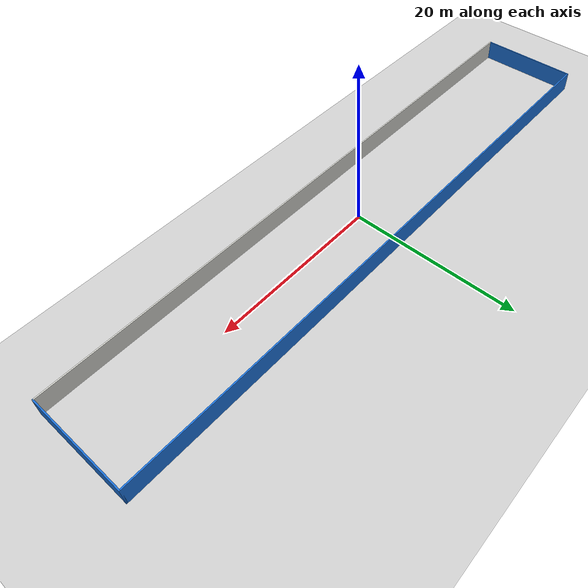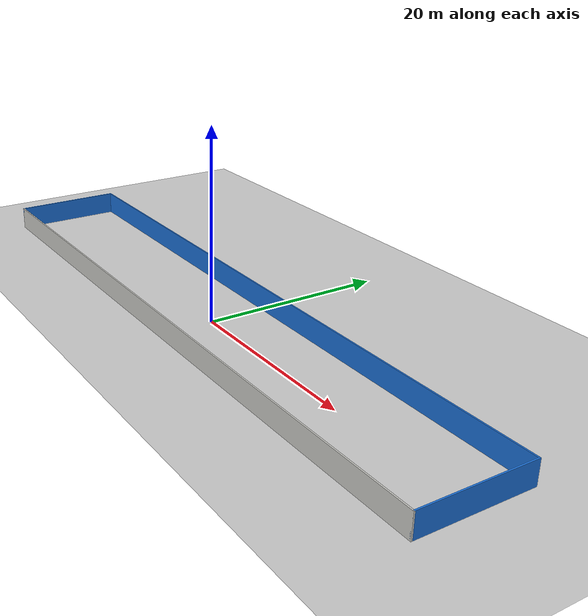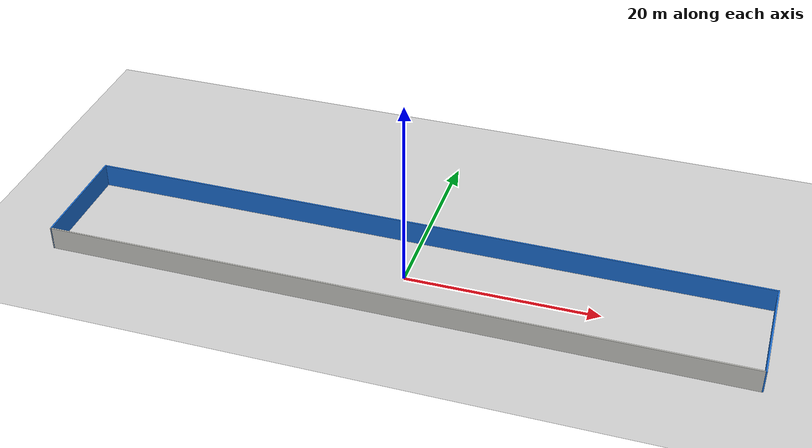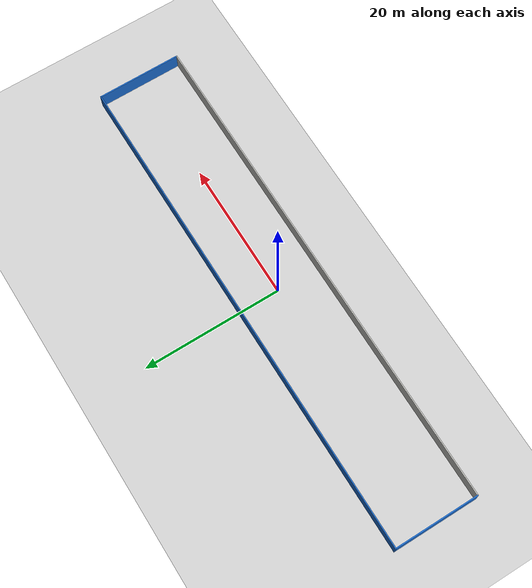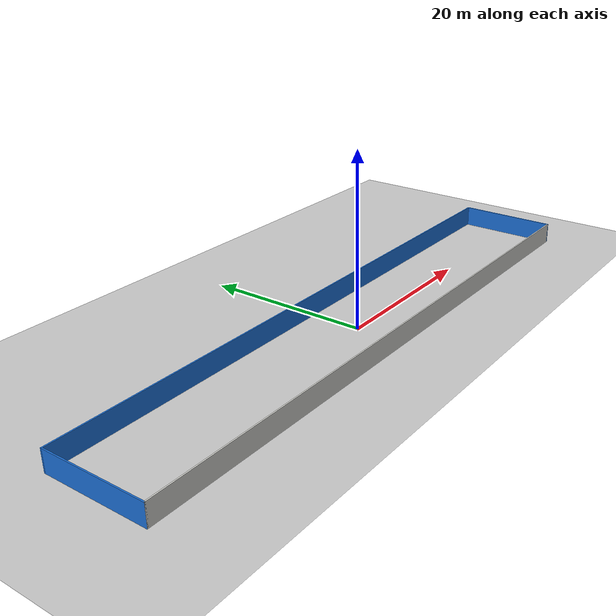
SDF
<sdf version="1.7">
 <world name="default">
  <model name="ground_plane">
   <static>1</static>
   <link name="link">
    <collision name="collision">
     <geometry><plane><normal>0 0 1</normal><size>100 100</size></plane></geometry>
     <surface>
      <contact><collide_bitmask>65535</collide_bitmask></contact>
      <friction><ode><mu>100</mu><mu2>50</mu2></ode></friction>
     </surface>
    </collision>
    <visual name="visual">
     <cast_shadows>0</cast_shadows>
     <geometry><plane><normal>0 0 1</normal><size>100 100</size></plane></geometry>
     <material>
      <script><uri>file://media/materials/scripts/gazebo.material</uri><name>Gazebo/Grey</name></script>
     </material>
    </visual>
   </link>
  </model>
  <model name="Marunda2">
   <link name="Wall_0">
    <collision name="Wall_0_Collision">
     <geometry><box><size>72.15 0.15 2.5</size></box></geometry>
     <pose>0 0 1.25 0 -0 0</pose>
    </collision>
    <visual name="Wall_0_Visual">
     <pose>0 0 1.25 0 -0 0</pose>
     <geometry><box><size>72.15 0.15 2.5</size></box></geometry>
     <material>
      <script><uri>file://media/materials/scripts/gazebo.material</uri><name>Gazebo/Grey</name></script>
      <ambient>0.109804 0.443137 0.847059 1</ambient>
     </material>
     <meta><layer>0</layer></meta>
    </visual>
    <pose>0 6 0 0 -0 0</pose>
   </link>
   <link name="Wall_2">
    <collision name="Wall_2_Collision">
     <geometry><box><size>72.15 0.15 2.5</size></box></geometry>
     <pose>0 0 1.25 0 -0 0</pose>
    </collision>
    <visual name="Wall_2_Visual">
     <pose>0 0 1.25 0 -0 0</pose>
     <geometry><box><size>72.15 0.15 2.5</size></box></geometry>
     <material>
      <script><uri>file://media/materials/scripts/gazebo.material</uri><name>Gazebo/CeilingTiled</name></script>
      <ambient>0.109804 0.443137 0.847059 1</ambient>
     </material>
     <meta><layer>0</layer></meta>
    </visual>
    <pose>0 -6 0 0 -0 0</pose>
   </link>
   <link name="Wall_4">
    <collision name="Wall_4_Collision">
     <geometry><box><size>12.15 0.15 2.5</size></box></geometry>
     <pose>0 0 1.25 0 -0 0</pose>
    </collision>
    <visual name="Wall_4_Visual">
     <pose>0 0 1.25 0 -0 0</pose>
     <geometry><box><size>12.15 0.15 2.5</size></box></geometry>
     <material>
      <script><uri>file://media/materials/scripts/gazebo.material</uri><name>Gazebo/Grey</name></script>
      <ambient>0.109804 0.443137 0.847059 1</ambient>
     </material>
     <meta><layer>0</layer></meta>
    </visual>
    <pose>-36 0 0 0 -0 -1.5708</pose>
   </link>
   <link name="Wall_6">
    <collision name="Wall_6_Collision">
     <geometry><box><size>12.15 0.15 2.5</size></box></geometry>
     <pose>0 0 1.25 0 -0 0</pose>
    </collision>
    <visual name="Wall_6_Visual">
     <pose>0 0 1.25 0 -0 0</pose>
     <geometry><box><size>12.15 0.15 2.5</size></box></geometry>
     <material>
      <script><uri>file://media/materials/scripts/gazebo.material</uri><name>Gazebo/Grey</name></script>
      <ambient>0.109804 0.443137 0.847059 1</ambient>
     </material>
     <meta><layer>0</layer></meta>
    </visual>
    <pose>36 0 0 0 -0 -1.5708</pose>
   </link>
   <static>1</static>
  </model>
 </world>
</sdf>
